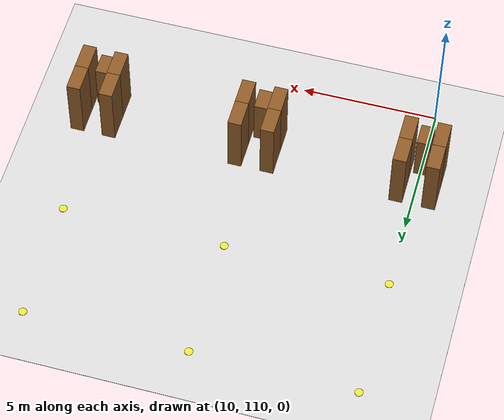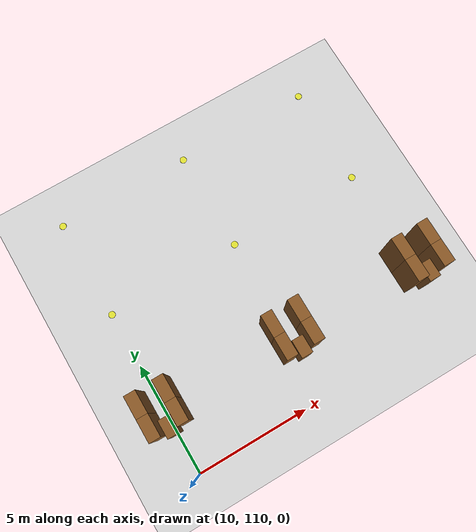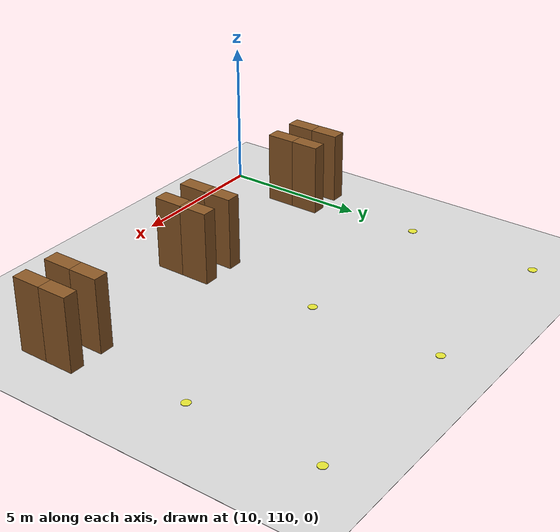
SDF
<sdf version="1.9">
 <world name="realistic_warehouse_150x200m">
  <model name="ground_plane">
   <static>true</static>
   <pose>68.5 102.0 0 0 0 0</pose>
   <link name="ground_link">
    <visual name="ground_visual">
     <geometry><box><size>127.0 194.0 0.01</size></box></geometry>
     <material><ambient>0.85 0.85 0.85 1.0</ambient><diffuse>0.85 0.85 0.85 1.0</diffuse></material>
    </visual>
    <collision name="ground_visual_collision">
     <geometry><box><size>127.0 194.0 0.01</size></box></geometry>
    </collision>
    <collision name="ground_collision">
     <geometry><plane><normal>0 0 1</normal><size>127.0 194.0</size></plane></geometry>
    </collision>
   </link>
  </model>
  <model name="rack_Zone_D_A0_S0_683">
   <static>true</static>
   <pose>9.4 112.5 1.25 0 0 0</pose>
   <link name="rack_Zone_D_A0_S0_683_link">
    <visual name="rack_Zone_D_A0_S0_683_vis">
     <geometry><box><size>0.5 1.0 2.5</size></box></geometry>
     <material><ambient>0.55 0.35 0.15 1.0</ambient><diffuse>0.55 0.35 0.15 1.0</diffuse></material>
    </visual>
    <collision name="rack_Zone_D_A0_S0_683_vis_collision">
     <geometry><box><size>0.5 1.0 2.5</size></box></geometry>
    </collision>
   </link>
  </model>
  <model name="rack_Zone_D_A0_S0_684">
   <static>true</static>
   <pose>9.4 113.5 1.25 0 0 0</pose>
   <link name="rack_Zone_D_A0_S0_684_link">
    <visual name="rack_Zone_D_A0_S0_684_vis">
     <geometry><box><size>0.5 1.0 2.5</size></box></geometry>
     <material><ambient>0.55 0.35 0.15 1.0</ambient><diffuse>0.55 0.35 0.15 1.0</diffuse></material>
    </visual>
    <collision name="rack_Zone_D_A0_S0_684_vis_collision">
     <geometry><box><size>0.5 1.0 2.5</size></box></geometry>
    </collision>
   </link>
  </model>
  <model name="rack_Zone_D_A0_S0_685">
   <static>true</static>
   <pose>10.6 112.5 1.25 0 0 0</pose>
   <link name="rack_Zone_D_A0_S0_685_link">
    <visual name="rack_Zone_D_A0_S0_685_vis">
     <geometry><box><size>0.5 1.0 2.5</size></box></geometry>
     <material><ambient>0.55 0.35 0.15 1.0</ambient><diffuse>0.55 0.35 0.15 1.0</diffuse></material>
    </visual>
    <collision name="rack_Zone_D_A0_S0_685_vis_collision">
     <geometry><box><size>0.5 1.0 2.5</size></box></geometry>
    </collision>
   </link>
  </model>
  <model name="rack_Zone_D_A0_S0_686">
   <static>true</static>
   <pose>10.6 113.5 1.25 0 0 0</pose>
   <link name="rack_Zone_D_A0_S0_686_link">
    <visual name="rack_Zone_D_A0_S0_686_vis">
     <geometry><box><size>0.5 1.0 2.5</size></box></geometry>
     <material><ambient>0.55 0.35 0.15 1.0</ambient><diffuse>0.55 0.35 0.15 1.0</diffuse></material>
    </visual>
    <collision name="rack_Zone_D_A0_S0_686_vis_collision">
     <geometry><box><size>0.5 1.0 2.5</size></box></geometry>
    </collision>
   </link>
  </model>
  <model name="rack_Zone_D_A0_S0_687">
   <static>true</static>
   <pose>10.0 112.2 0.9375 0 0 0</pose>
   <link name="rack_Zone_D_A0_S0_687_link">
    <visual name="rack_Zone_D_A0_S0_687_vis">
     <geometry><box><size>0.5 0.8 1.875</size></box></geometry>
     <material><ambient>0.55 0.35 0.15 1.0</ambient><diffuse>0.55 0.35 0.15 1.0</diffuse></material>
    </visual>
    <collision name="rack_Zone_D_A0_S0_687_vis_collision">
     <geometry><box><size>0.5 0.8 1.875</size></box></geometry>
    </collision>
   </link>
  </model>
  <model name="cross_Zone_D_A0_S1_688">
   <static>true</static>
   <pose>10.0 117.5 0.01 0 0 0</pose>
   <link name="cross_Zone_D_A0_S1_688_link">
    <visual name="cross_Zone_D_A0_S1_688_vis">
     <geometry><cylinder><radius>0.15</radius><length>0.02</length></cylinder></geometry>
     <material><ambient>0.9 0.9 0.2 1.0</ambient><diffuse>0.9 0.9 0.2 1.0</diffuse></material>
    </visual>
    <collision name="cross_Zone_D_A0_S1_688_vis_collision">
     <geometry><cylinder><radius>0.15</radius><length>0.02</length></cylinder></geometry>
    </collision>
   </link>
  </model>
  <model name="gap_Zone_D_A0_S2_689">
   <static>true</static>
   <pose>10.0 122.0 0.01 0 0 0</pose>
   <link name="gap_Zone_D_A0_S2_689_link">
    <visual name="gap_Zone_D_A0_S2_689_vis">
     <geometry><cylinder><radius>0.15</radius><length>0.02</length></cylinder></geometry>
     <material><ambient>0.9 0.9 0.2 1.0</ambient><diffuse>0.9 0.9 0.2 1.0</diffuse></material>
    </visual>
    <collision name="gap_Zone_D_A0_S2_689_vis_collision">
     <geometry><cylinder><radius>0.15</radius><length>0.02</length></cylinder></geometry>
    </collision>
   </link>
  </model>
  <model name="rack_Zone_D_A1_S0_703">
   <static>true</static>
   <pose>15.4 112.5 1.25 0 0 0</pose>
   <link name="rack_Zone_D_A1_S0_703_link">
    <visual name="rack_Zone_D_A1_S0_703_vis">
     <geometry><box><size>0.5 1.0 2.5</size></box></geometry>
     <material><ambient>0.55 0.35 0.15 1.0</ambient><diffuse>0.55 0.35 0.15 1.0</diffuse></material>
    </visual>
    <collision name="rack_Zone_D_A1_S0_703_vis_collision">
     <geometry><box><size>0.5 1.0 2.5</size></box></geometry>
    </collision>
   </link>
  </model>
  <model name="rack_Zone_D_A1_S0_704">
   <static>true</static>
   <pose>15.4 113.5 1.25 0 0 0</pose>
   <link name="rack_Zone_D_A1_S0_704_link">
    <visual name="rack_Zone_D_A1_S0_704_vis">
     <geometry><box><size>0.5 1.0 2.5</size></box></geometry>
     <material><ambient>0.55 0.35 0.15 1.0</ambient><diffuse>0.55 0.35 0.15 1.0</diffuse></material>
    </visual>
    <collision name="rack_Zone_D_A1_S0_704_vis_collision">
     <geometry><box><size>0.5 1.0 2.5</size></box></geometry>
    </collision>
   </link>
  </model>
  <model name="rack_Zone_D_A1_S0_705">
   <static>true</static>
   <pose>16.6 112.5 1.25 0 0 0</pose>
   <link name="rack_Zone_D_A1_S0_705_link">
    <visual name="rack_Zone_D_A1_S0_705_vis">
     <geometry><box><size>0.5 1.0 2.5</size></box></geometry>
     <material><ambient>0.55 0.35 0.15 1.0</ambient><diffuse>0.55 0.35 0.15 1.0</diffuse></material>
    </visual>
    <collision name="rack_Zone_D_A1_S0_705_vis_collision">
     <geometry><box><size>0.5 1.0 2.5</size></box></geometry>
    </collision>
   </link>
  </model>
  <model name="rack_Zone_D_A1_S0_706">
   <static>true</static>
   <pose>16.6 113.5 1.25 0 0 0</pose>
   <link name="rack_Zone_D_A1_S0_706_link">
    <visual name="rack_Zone_D_A1_S0_706_vis">
     <geometry><box><size>0.5 1.0 2.5</size></box></geometry>
     <material><ambient>0.55 0.35 0.15 1.0</ambient><diffuse>0.55 0.35 0.15 1.0</diffuse></material>
    </visual>
    <collision name="rack_Zone_D_A1_S0_706_vis_collision">
     <geometry><box><size>0.5 1.0 2.5</size></box></geometry>
    </collision>
   </link>
  </model>
  <model name="rack_Zone_D_A1_S0_707">
   <static>true</static>
   <pose>16.0 112.2 0.9375 0 0 0</pose>
   <link name="rack_Zone_D_A1_S0_707_link">
    <visual name="rack_Zone_D_A1_S0_707_vis">
     <geometry><box><size>0.5 0.8 1.875</size></box></geometry>
     <material><ambient>0.55 0.35 0.15 1.0</ambient><diffuse>0.55 0.35 0.15 1.0</diffuse></material>
    </visual>
    <collision name="rack_Zone_D_A1_S0_707_vis_collision">
     <geometry><box><size>0.5 0.8 1.875</size></box></geometry>
    </collision>
   </link>
  </model>
  <model name="cross_Zone_D_A1_S1_708">
   <static>true</static>
   <pose>16.0 117.5 0.01 0 0 0</pose>
   <link name="cross_Zone_D_A1_S1_708_link">
    <visual name="cross_Zone_D_A1_S1_708_vis">
     <geometry><cylinder><radius>0.15</radius><length>0.02</length></cylinder></geometry>
     <material><ambient>0.9 0.9 0.2 1.0</ambient><diffuse>0.9 0.9 0.2 1.0</diffuse></material>
    </visual>
    <collision name="cross_Zone_D_A1_S1_708_vis_collision">
     <geometry><cylinder><radius>0.15</radius><length>0.02</length></cylinder></geometry>
    </collision>
   </link>
  </model>
  <model name="gap_Zone_D_A1_S2_709">
   <static>true</static>
   <pose>16.0 122.0 0.01 0 0 0</pose>
   <link name="gap_Zone_D_A1_S2_709_link">
    <visual name="gap_Zone_D_A1_S2_709_vis">
     <geometry><cylinder><radius>0.15</radius><length>0.02</length></cylinder></geometry>
     <material><ambient>0.9 0.9 0.2 1.0</ambient><diffuse>0.9 0.9 0.2 1.0</diffuse></material>
    </visual>
    <collision name="gap_Zone_D_A1_S2_709_vis_collision">
     <geometry><cylinder><radius>0.15</radius><length>0.02</length></cylinder></geometry>
    </collision>
   </link>
  </model>
  <model name="rack_Zone_D_A2_S0_723">
   <static>true</static>
   <pose>21.4 112.5 1.25 0 0 0</pose>
   <link name="rack_Zone_D_A2_S0_723_link">
    <visual name="rack_Zone_D_A2_S0_723_vis">
     <geometry><box><size>0.5 1.0 2.5</size></box></geometry>
     <material><ambient>0.55 0.35 0.15 1.0</ambient><diffuse>0.55 0.35 0.15 1.0</diffuse></material>
    </visual>
    <collision name="rack_Zone_D_A2_S0_723_vis_collision">
     <geometry><box><size>0.5 1.0 2.5</size></box></geometry>
    </collision>
   </link>
  </model>
  <model name="rack_Zone_D_A2_S0_724">
   <static>true</static>
   <pose>21.4 113.5 1.25 0 0 0</pose>
   <link name="rack_Zone_D_A2_S0_724_link">
    <visual name="rack_Zone_D_A2_S0_724_vis">
     <geometry><box><size>0.5 1.0 2.5</size></box></geometry>
     <material><ambient>0.55 0.35 0.15 1.0</ambient><diffuse>0.55 0.35 0.15 1.0</diffuse></material>
    </visual>
    <collision name="rack_Zone_D_A2_S0_724_vis_collision">
     <geometry><box><size>0.5 1.0 2.5</size></box></geometry>
    </collision>
   </link>
  </model>
  <model name="rack_Zone_D_A2_S0_725">
   <static>true</static>
   <pose>22.6 112.5 1.25 0 0 0</pose>
   <link name="rack_Zone_D_A2_S0_725_link">
    <visual name="rack_Zone_D_A2_S0_725_vis">
     <geometry><box><size>0.5 1.0 2.5</size></box></geometry>
     <material><ambient>0.55 0.35 0.15 1.0</ambient><diffuse>0.55 0.35 0.15 1.0</diffuse></material>
    </visual>
    <collision name="rack_Zone_D_A2_S0_725_vis_collision">
     <geometry><box><size>0.5 1.0 2.5</size></box></geometry>
    </collision>
   </link>
  </model>
  <model name="rack_Zone_D_A2_S0_726">
   <static>true</static>
   <pose>22.6 113.5 1.25 0 0 0</pose>
   <link name="rack_Zone_D_A2_S0_726_link">
    <visual name="rack_Zone_D_A2_S0_726_vis">
     <geometry><box><size>0.5 1.0 2.5</size></box></geometry>
     <material><ambient>0.55 0.35 0.15 1.0</ambient><diffuse>0.55 0.35 0.15 1.0</diffuse></material>
    </visual>
    <collision name="rack_Zone_D_A2_S0_726_vis_collision">
     <geometry><box><size>0.5 1.0 2.5</size></box></geometry>
    </collision>
   </link>
  </model>
  <model name="rack_Zone_D_A2_S0_727">
   <static>true</static>
   <pose>22.0 112.2 0.9375 0 0 0</pose>
   <link name="rack_Zone_D_A2_S0_727_link">
    <visual name="rack_Zone_D_A2_S0_727_vis">
     <geometry><box><size>0.5 0.8 1.875</size></box></geometry>
     <material><ambient>0.55 0.35 0.15 1.0</ambient><diffuse>0.55 0.35 0.15 1.0</diffuse></material>
    </visual>
    <collision name="rack_Zone_D_A2_S0_727_vis_collision">
     <geometry><box><size>0.5 0.8 1.875</size></box></geometry>
    </collision>
   </link>
  </model>
  <model name="cross_Zone_D_A2_S1_728">
   <static>true</static>
   <pose>22.0 117.5 0.01 0 0 0</pose>
   <link name="cross_Zone_D_A2_S1_728_link">
    <visual name="cross_Zone_D_A2_S1_728_vis">
     <geometry><cylinder><radius>0.15</radius><length>0.02</length></cylinder></geometry>
     <material><ambient>0.9 0.9 0.2 1.0</ambient><diffuse>0.9 0.9 0.2 1.0</diffuse></material>
    </visual>
    <collision name="cross_Zone_D_A2_S1_728_vis_collision">
     <geometry><cylinder><radius>0.15</radius><length>0.02</length></cylinder></geometry>
    </collision>
   </link>
  </model>
  <model name="gap_Zone_D_A2_S2_729">
   <static>true</static>
   <pose>22.0 122.0 0.01 0 0 0</pose>
   <link name="gap_Zone_D_A2_S2_729_link">
    <visual name="gap_Zone_D_A2_S2_729_vis">
     <geometry><cylinder><radius>0.15</radius><length>0.02</length></cylinder></geometry>
     <material><ambient>0.9 0.9 0.2 1.0</ambient><diffuse>0.9 0.9 0.2 1.0</diffuse></material>
    </visual>
    <collision name="gap_Zone_D_A2_S2_729_vis_collision">
     <geometry><cylinder><radius>0.15</radius><length>0.02</length></cylinder></geometry>
    </collision>
   </link>
  </model>
 </world>
</sdf>
